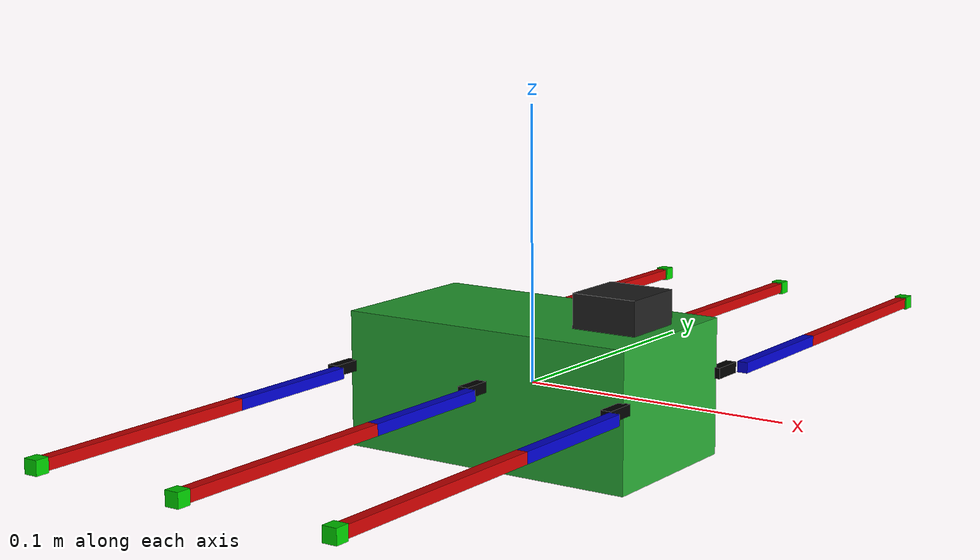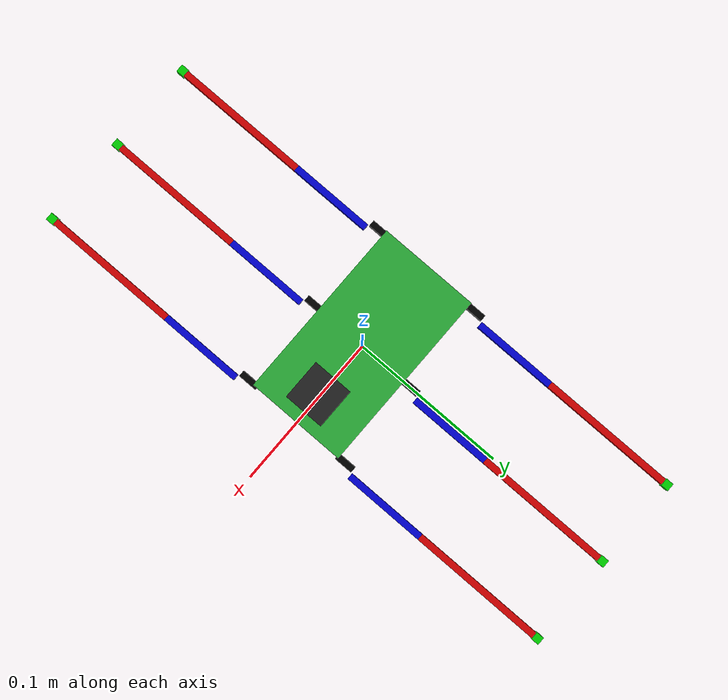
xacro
<?xml version="1.0"?>
<robot xmlns:xacro="http://www.ros.org/wiki/xacro" name="hexapod">

	<gazebo>
	  <plugin name="gazebo_ros_control" filename="libgazebo_ros_control.so">
	    <robotNamespace>/hexapod</robotNamespace>
      	<robotSimType>gazebo_ros_control/DefaultRobotHWSim</robotSimType>
	  </plugin>
	</gazebo>

	<xacro:property name="upper_leg_length" value=".053" />
	<xacro:property name="lower_leg_length" value=".088" />

	<material name="blue">
		<color rgba="0 0 .8 1" />
	</material>

	<material name="red">
		<color rgba="0.8 0 0 1" />
	</material>

	<material name="green">
		<color rgba="0 0.8 0 1" />
	</material>

	<material name="black">
		<color rgba="0 0 0 1" />
	</material>

	<xacro:macro name="cube_inertial" params="origin_xyz mass width height depth">
		<inertial>
			<origin xyz="${origin_xyz}"/>
			<mass value="${mass}" />

			<inertia	ixx="1E-3" 	ixy="0.0" 	ixz="0.0"
									iyy="1E-3" 	iyz="0.0"
												izz="1E-3" />
		</inertial>
	</xacro:macro>

	<xacro:macro name="leg" params="name yoffset reflect">

		<link name="${name}_coxa">
			<collision>
				<geometry>
					<box size="0.004 0.012 0.004" />
				</geometry>
				<origin xyz="0 ${reflect*0.005} 0" />
			</collision>
			<visual>
				<geometry>
					<box size="0.004 0.012 0.004" />
				</geometry>
				<origin xyz="0 ${reflect*0.005} 0" />

				<material name="black"/>
			</visual>

			<xacro:cube_inertial origin_xyz="0 ${reflect*0.005} 0" mass="0.025" width="0.004" height="0.01" depth="0.01"/>

		</link>

		<gazebo reference="${name}_coxa">
		 	<material>Gazebo/Black</material>
		</gazebo>

		<link name="${name}_femur">
			<collision>
				<geometry>
					<box size="0.004 ${upper_leg_length} 0.004" />
				</geometry>
				<origin xyz="0 ${reflect*upper_leg_length/2} 0" />
			</collision>
			<visual>
				<geometry>
					<box size="0.004 ${upper_leg_length} 0.004" />
				</geometry>
				<material name="blue"/>
				<origin xyz="0 ${reflect*upper_leg_length/2} 0" />
			</visual>
			<xacro:cube_inertial origin_xyz="0 ${reflect*upper_leg_length/2} 0" mass="0.025" width="0.004" height="${upper_leg_length}" depth="0.01"/>
		</link>

		<gazebo reference="${name}_femur">
		 	<material>Gazebo/Black</material>
		</gazebo>

		<link name="${name}_tibia">
			<collision>
				<geometry>
					<box size="0.004 ${lower_leg_length} 0.004" />
				</geometry>
				<origin xyz="0 ${reflect*lower_leg_length/2} 0" />
			</collision>
			<visual>
				<geometry>
					<box size="0.004 ${lower_leg_length} 0.004" />
				</geometry>
				<material name="red"/>
				<origin xyz="0 ${reflect*lower_leg_length/2} 0" />
			</visual>

			<xacro:cube_inertial origin_xyz="0 ${reflect*lower_leg_length/2} 0" mass="0.015" width="0.004" height="${lower_leg_length}" depth="0.01"/>
		</link>

		<link name="${name}_foot">
			<collision>
				<geometry>
					<box size="0.005 0.005 0.005" />
				</geometry>
				<origin xyz="0 0 0" />
			</collision>
			<visual>
				<geometry>
					<box size="0.005 0.005 0.005" />
				</geometry>
				<material name="green"/>
				<origin xyz="0 0 0" />
			</visual>
		</link>

		<gazebo reference="${name}_tibia">
			<material>Gazebo/Black</material>
			<mu1>1</mu1>
		  	<mu2>1</mu2>
		  	<kp>1000</kp>
		  	<kd>0.1</kd>
		  	<minDepth>0.001</minDepth>
		</gazebo>

		<joint name="base_to_${name}_coxa" type="revolute">
			<axis xyz="0 0 ${reflect*1}"/>
			<dynamics damping=".05" friction=".05"/>
			<limit effort="0.35" lower="-0.78" upper="0.78" velocity="10" />
			<parent link="base_link" />
			<child link="${name}_coxa" />
			<origin xyz="${yoffset} ${reflect*0.0315} 0.005" />

		</joint>

		<transmission name="base_to_${name}_coxa_transmission">
			<type>transmission_interface/SimpleTransmission</type>
			<joint name="base_to_${name}_coxa">
				<hardwareInterface>PositionJointInterface</hardwareInterface>
		    </joint>
		    <actuator name="srv_base_to_${name}_coxa">
		      <hardwareInterface>PositionJointInterface</hardwareInterface>
		    </actuator>
		</transmission>

		<joint name="${name}_coxa_to_femur" type="revolute">
			<axis xyz="${reflect*1} 0 0" />
			<dynamics damping=".05" friction=".05"/>
			<limit effort="0.35" lower="-0.25" upper="2.5" velocity="10" />
			<parent link="${name}_coxa" />
			<child link="${name}_femur" />
			<origin xyz="0.004 ${reflect*0.012} 0" />

		</joint>

		<transmission name="coxa_to_${name}_femur_transmission">
			<type>transmission_interface/SimpleTransmission</type>
			<joint name="${name}_coxa_to_femur">
				<hardwareInterface>PositionJointInterface</hardwareInterface>
		    </joint>
		    <actuator name="srv_${name}_coxa_to_femur">
		      <hardwareInterface>PositionJointInterface</hardwareInterface>
		    </actuator>
		</transmission>

		<joint name="${name}_femur_to_tibia" type="revolute">
			<axis xyz="${reflect*1} 0 0" />
			<dynamics damping=".05" friction=".05"/>
			<limit effort="0.35" lower="-2.6" upper="0.5" velocity="10" />
			<parent link="${name}_femur" />
			<child link="${name}_tibia" />
			<origin xyz="0.000 ${reflect*upper_leg_length} 0" />
		</joint>

		<transmission name="femur_to_${name}_tibia_transmission">
			<type>transmission_interface/SimpleTransmission</type>
			<joint name="${name}_femur_to_tibia">
				<hardwareInterface>PositionJointInterface</hardwareInterface>
		    </joint>
		    <actuator name="srv_${name}_femur_to_tibia">
		      <hardwareInterface>PositionJointInterface</hardwareInterface>
		    </actuator>
		</transmission>

		<joint name="${name}_tibia_to_foot" type="fixed">
			<parent link="${name}_tibia" />
			<child link="${name}_foot" />
			<origin xyz="0.000 ${reflect*lower_leg_length} 0" />
		</joint>
	</xacro:macro>

	<link name="base_link">
		<collision>
			<geometry>
				<box size="0.115 .063 .05" />
			</geometry>
		</collision>
		<visual>
			<geometry>
				<box size="0.115 .063 .05" />
			</geometry>
		</visual>
		<material name="green"/>
	</link>

	<link name="front_marker">
		<collision>
			<geometry>
				<box size="0.02 .02 .02" />
			</geometry>
			<origin xyz="-0.01 0 0" />
		</collision>
		<visual>
			<geometry>
				<box size="0.025 .025 .025" />
			</geometry>
			<origin xyz="-0.0125 0 0" />
		</visual>
		<material name="black"/>
	</link>

	<gazebo reference="base_link">
	  	<material>Gazebo/Green</material>
		<mu1>100</mu1>
		<mu2>100</mu2>
	</gazebo>

	<gazebo reference="front_marker">
	  	<material>Gazebo/Black</material>
		<mu1>100</mu1>
		<mu2>100</mu2>
	</gazebo>

	<joint name="front_marker_joint" type="fixed">
		<parent link="base_link"/>
		<child link="front_marker"/>
		<origin xyz="0.05 0 0.025"/>
	</joint>

	<link name="inertial_sub">
		<collision>
			<geometry>
				<box size="0.115 .063 .05" />
			</geometry>
		</collision>
		<visual>
			<geometry>
				<box size="0.115 .063 .05" />
			</geometry>
		</visual>
		<xacro:cube_inertial origin_xyz="0 0 0" mass="0.35" width="0.2" height="0.08" depth="0.05"/>
	</link>

	<gazebo reference="inertial_sub">
	  	<material>Gazebo/Blue</material>
	</gazebo>

	<joint name="inertial_sub_joint" type="fixed">
		<parent link="base_link"/>
		<child link="inertial_sub"/>
	</joint>

	<xacro:leg name="fl" yoffset="0.0575" reflect="1" />
	<xacro:leg name="ml" yoffset="0" reflect="1" />
	<xacro:leg name="rl" yoffset="-0.0575" reflect="1" />

	<xacro:leg name="fr" yoffset="0.0575" reflect="-1" />
	<xacro:leg name="mr" yoffset="0" reflect="-1" />
	<xacro:leg name="rr" yoffset="-0.0575" reflect="-1" />

</robot>
